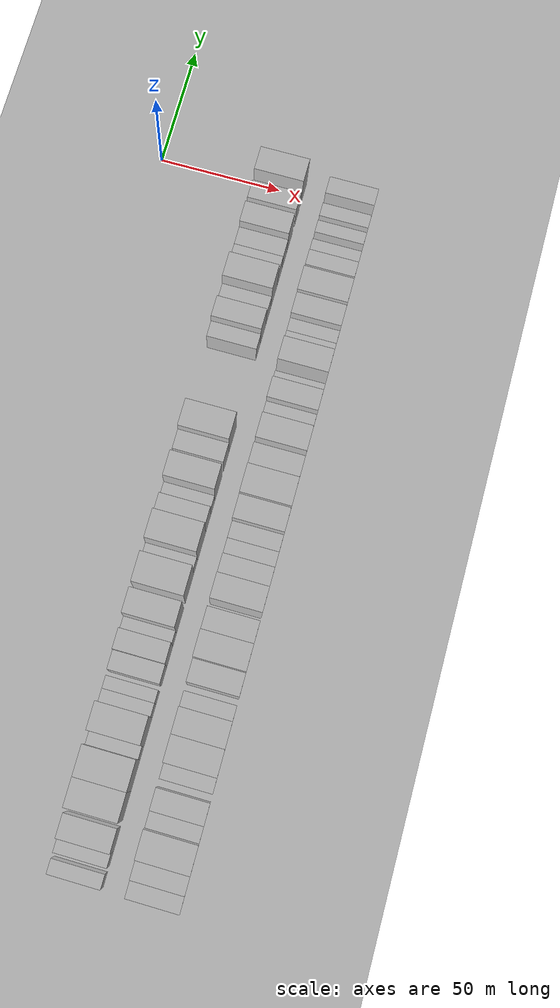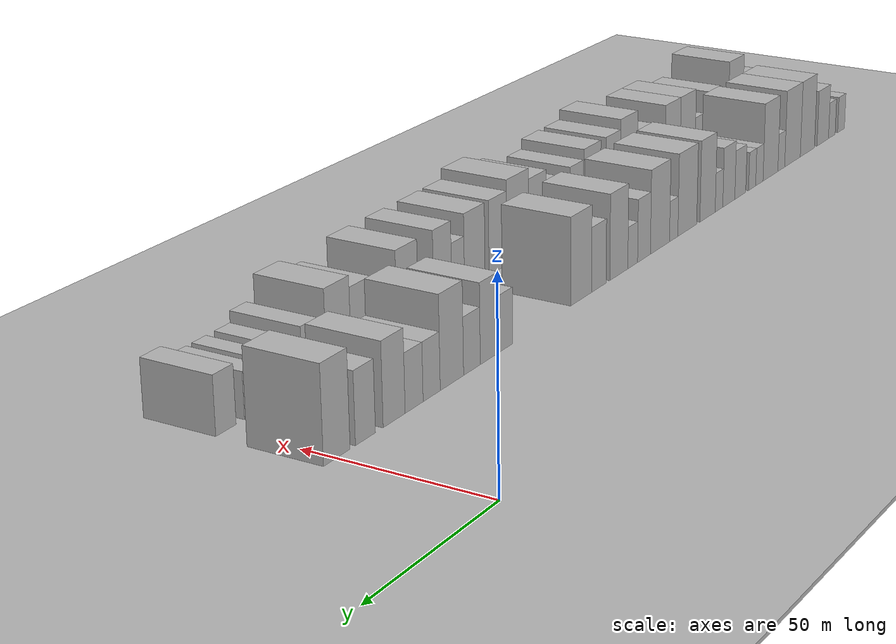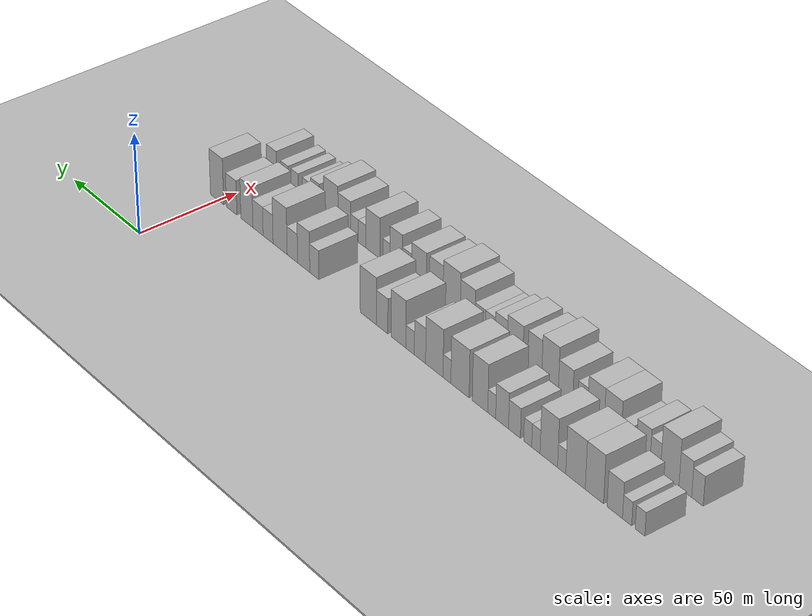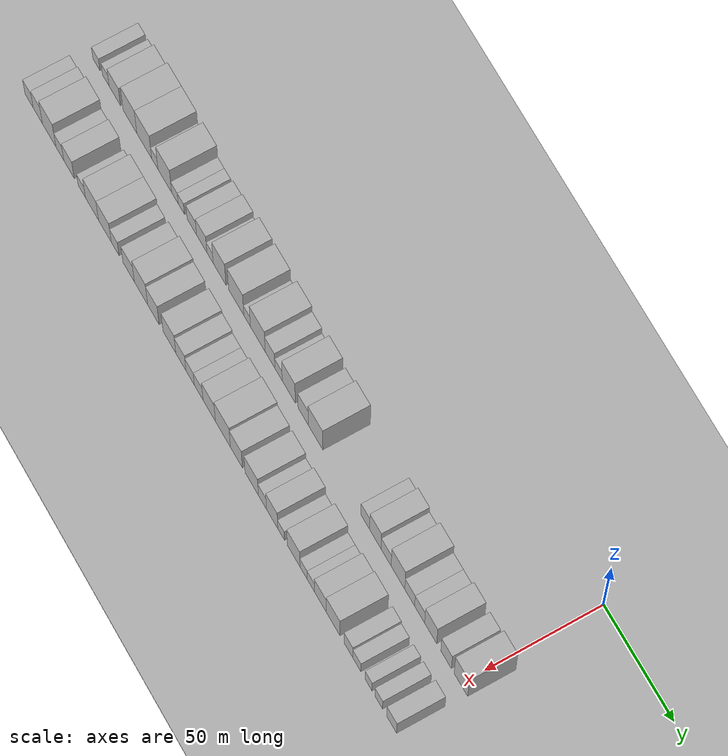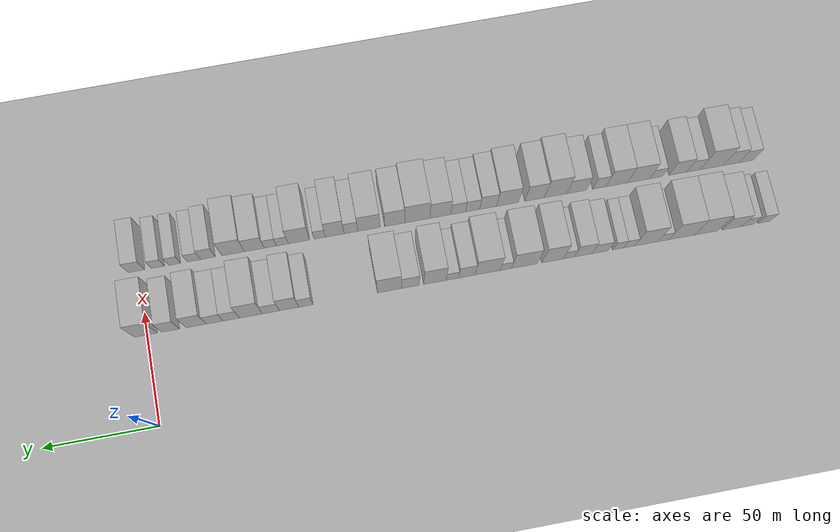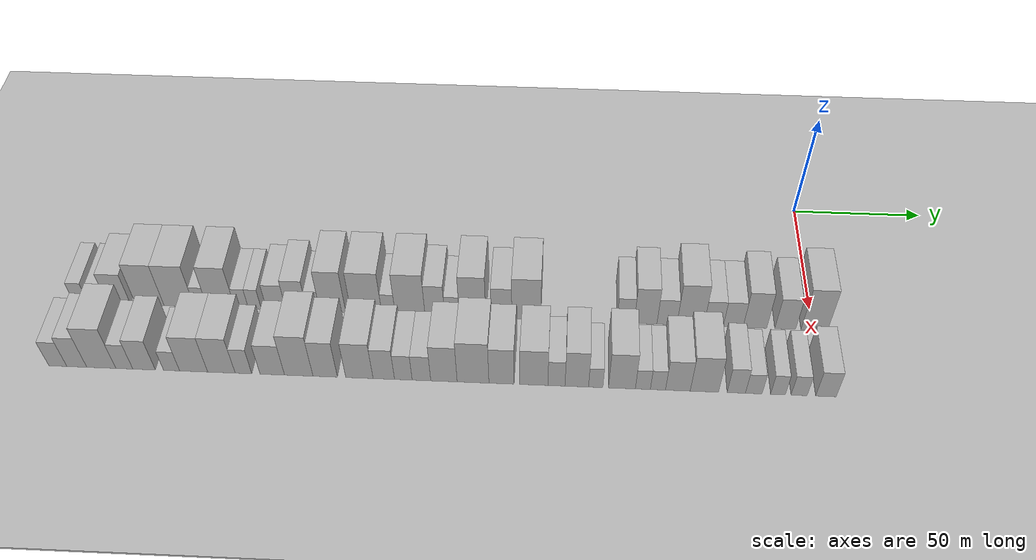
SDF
<sdf version="1.6">
 <world name="default">
  <include><name>ground_plane_1</name><uri>model://HANNAS_ground_plane</uri></include>
  <include>
   <name>ground_plane_2</name>
   <uri>model://HANNAS_ground_plane</uri>
   <pose>100 0 0  0 0 0</pose>
  </include>
  <model name="building_1">
   <static>1</static>
   <pose>50.0000 -275.2254 0 0.000000 0.000000 0.000000</pose>
   <link name="link">
    <pose>0 0 6.00 0 0 0</pose>
    <collision name="collision"><geometry><box><size>20.0000 5.5493 12.0000</size></box></geometry></collision>
    <visual name="visual">
     <cast_shadows>0</cast_shadows>
     <geometry><box><size>20.0000 5.5493 12.0000</size></box></geometry>
     <material>
      <script>
       <uri>model://HANNAS_wall/materials/scripts</uri>
       <uri>model://HANNAS_wall/materials/textures</uri>
       <name>vrc/HANNAS_wall</name>
      </script>
     </material>
    </visual>
   </link>
  </model>
  <model name="building_2">
   <static>1</static>
   <pose>50.0000 -267.8029 0 0.000000 0.000000 0.000000</pose>
   <link name="link">
    <pose>0 0 6.00 0 0 0</pose>
    <collision name="collision"><geometry><box><size>20.0000 5.2957 12.0000</size></box></geometry></collision>
    <visual name="visual">
     <cast_shadows>0</cast_shadows>
     <geometry><box><size>20.0000 5.2957 12.0000</size></box></geometry>
     <material>
      <script>
       <uri>model://HANNAS_wall/materials/scripts</uri>
       <uri>model://HANNAS_wall/materials/textures</uri>
       <name>vrc/HANNAS_wall</name>
      </script>
     </material>
    </visual>
   </link>
  </model>
  <model name="building_3">
   <static>1</static>
   <pose>50.0000 -260.6596 0 0.000000 0.000000 0.000000</pose>
   <link name="link">
    <pose>0 0 9.00 0 0 0</pose>
    <collision name="collision"><geometry><box><size>20.0000 8.9908 18.0000</size></box></geometry></collision>
    <visual name="visual">
     <cast_shadows>0</cast_shadows>
     <geometry><box><size>20.0000 8.9908 18.0000</size></box></geometry>
     <material>
      <script>
       <uri>model://HANNAS_wall/materials/scripts</uri>
       <uri>model://HANNAS_wall/materials/textures</uri>
       <name>vrc/HANNAS_wall</name>
      </script>
     </material>
    </visual>
   </link>
  </model>
  <model name="building_4">
   <static>1</static>
   <pose>50.0000 -248.7745 0 0.000000 0.000000 0.000000</pose>
   <link name="link">
    <pose>0 0 12.00 0 0 0</pose>
    <collision name="collision"><geometry><box><size>20.0000 10.7793 24.0000</size></box></geometry></collision>
    <visual name="visual">
     <cast_shadows>0</cast_shadows>
     <geometry><box><size>20.0000 10.7793 24.0000</size></box></geometry>
     <material>
      <script>
       <uri>model://HANNAS_wall/materials/scripts</uri>
       <uri>model://HANNAS_wall/materials/textures</uri>
       <name>vrc/HANNAS_wall</name>
      </script>
     </material>
    </visual>
   </link>
  </model>
  <model name="building_5">
   <static>1</static>
   <pose>50.0000 -237.6013 0 0.000000 0.000000 0.000000</pose>
   <link name="link">
    <pose>0 0 12.00 0 0 0</pose>
    <collision name="collision"><geometry><box><size>20.0000 11.5671 24.0000</size></box></geometry></collision>
    <visual name="visual">
     <cast_shadows>0</cast_shadows>
     <geometry><box><size>20.0000 11.5671 24.0000</size></box></geometry>
     <material>
      <script>
       <uri>model://HANNAS_wall/materials/scripts</uri>
       <uri>model://HANNAS_wall/materials/textures</uri>
       <name>vrc/HANNAS_wall</name>
      </script>
     </material>
    </visual>
   </link>
  </model>
  <model name="building_6">
   <static>1</static>
   <pose>50.0000 -229.3475 0 0.000000 0.000000 0.000000</pose>
   <link name="link">
    <pose>0 0 6.00 0 0 0</pose>
    <collision name="collision"><geometry><box><size>20.0000 4.9405 12.0000</size></box></geometry></collision>
    <visual name="visual">
     <cast_shadows>0</cast_shadows>
     <geometry><box><size>20.0000 4.9405 12.0000</size></box></geometry>
     <material>
      <script>
       <uri>model://HANNAS_wall/materials/scripts</uri>
       <uri>model://HANNAS_wall/materials/textures</uri>
       <name>vrc/HANNAS_wall</name>
      </script>
     </material>
    </visual>
   </link>
  </model>
  <model name="building_7">
   <static>1</static>
   <pose>50.0000 -221.5886 0 0.000000 0.000000 0.000000</pose>
   <link name="link">
    <pose>0 0 12.00 0 0 0</pose>
    <collision name="collision"><geometry><box><size>20.0000 10.5772 24.0000</size></box></geometry></collision>
    <visual name="visual">
     <cast_shadows>0</cast_shadows>
     <geometry><box><size>20.0000 10.5772 24.0000</size></box></geometry>
     <material>
      <script>
       <uri>model://HANNAS_wall/materials/scripts</uri>
       <uri>model://HANNAS_wall/materials/textures</uri>
       <name>vrc/HANNAS_wall</name>
      </script>
     </material>
    </visual>
   </link>
  </model>
  <model name="building_8">
   <static>1</static>
   <pose>50.0000 -213.7445 0 0.000000 0.000000 0.000000</pose>
   <link name="link">
    <pose>0 0 6.00 0 0 0</pose>
    <collision name="collision"><geometry><box><size>20.0000 5.1109 12.0000</size></box></geometry></collision>
    <visual name="visual">
     <cast_shadows>0</cast_shadows>
     <geometry><box><size>20.0000 5.1109 12.0000</size></box></geometry>
     <material>
      <script>
       <uri>model://HANNAS_wall/materials/scripts</uri>
       <uri>model://HANNAS_wall/materials/textures</uri>
       <name>vrc/HANNAS_wall</name>
      </script>
     </material>
    </visual>
   </link>
  </model>
  <model name="building_9">
   <static>1</static>
   <pose>50.0000 -208.7607 0 0.000000 0.000000 0.000000</pose>
   <link name="link">
    <pose>0 0 6.00 0 0 0</pose>
    <collision name="collision"><geometry><box><size>20.0000 4.8567 12.0000</size></box></geometry></collision>
    <visual name="visual">
     <cast_shadows>0</cast_shadows>
     <geometry><box><size>20.0000 4.8567 12.0000</size></box></geometry>
     <material>
      <script>
       <uri>model://HANNAS_wall/materials/scripts</uri>
       <uri>model://HANNAS_wall/materials/textures</uri>
       <name>vrc/HANNAS_wall</name>
      </script>
     </material>
    </visual>
   </link>
  </model>
  <model name="building_10">
   <static>1</static>
   <pose>50.0000 -200.6562 0 0.000000 0.000000 0.000000</pose>
   <link name="link">
    <pose>0 0 7.50 0 0 0</pose>
    <collision name="collision"><geometry><box><size>20.0000 7.3524 15.0000</size></box></geometry></collision>
    <visual name="visual">
     <cast_shadows>0</cast_shadows>
     <geometry><box><size>20.0000 7.3524 15.0000</size></box></geometry>
     <material>
      <script>
       <uri>model://HANNAS_wall/materials/scripts</uri>
       <uri>model://HANNAS_wall/materials/textures</uri>
       <name>vrc/HANNAS_wall</name>
      </script>
     </material>
    </visual>
   </link>
  </model>
  <model name="building_11">
   <static>1</static>
   <pose>50.0000 -192.9936 0 0.000000 0.000000 0.000000</pose>
   <link name="link">
    <pose>0 0 9.00 0 0 0</pose>
    <collision name="collision"><geometry><box><size>20.0000 7.9729 18.0000</size></box></geometry></collision>
    <visual name="visual">
     <cast_shadows>0</cast_shadows>
     <geometry><box><size>20.0000 7.9729 18.0000</size></box></geometry>
     <material>
      <script>
       <uri>model://HANNAS_wall/materials/scripts</uri>
       <uri>model://HANNAS_wall/materials/textures</uri>
       <name>vrc/HANNAS_wall</name>
      </script>
     </material>
    </visual>
   </link>
  </model>
  <model name="building_12">
   <static>1</static>
   <pose>50.0000 -186.5411 0 0.000000 0.000000 0.000000</pose>
   <link name="link">
    <pose>0 0 6.00 0 0 0</pose>
    <collision name="collision"><geometry><box><size>20.0000 4.9321 12.0000</size></box></geometry></collision>
    <visual name="visual">
     <cast_shadows>0</cast_shadows>
     <geometry><box><size>20.0000 4.9321 12.0000</size></box></geometry>
     <material>
      <script>
       <uri>model://HANNAS_wall/materials/scripts</uri>
       <uri>model://HANNAS_wall/materials/textures</uri>
       <name>vrc/HANNAS_wall</name>
      </script>
     </material>
    </visual>
   </link>
  </model>
  <model name="building_13">
   <static>1</static>
   <pose>50.0000 -179.2054 0 0.000000 0.000000 0.000000</pose>
   <link name="link">
    <pose>0 0 12.00 0 0 0</pose>
    <collision name="collision"><geometry><box><size>20.0000 9.7393 24.0000</size></box></geometry></collision>
    <visual name="visual">
     <cast_shadows>0</cast_shadows>
     <geometry><box><size>20.0000 9.7393 24.0000</size></box></geometry>
     <material>
      <script>
       <uri>model://HANNAS_wall/materials/scripts</uri>
       <uri>model://HANNAS_wall/materials/textures</uri>
       <name>vrc/HANNAS_wall</name>
      </script>
     </material>
    </visual>
   </link>
  </model>
  <model name="building_14">
   <static>1</static>
   <pose>50.0000 -166.5232 0 0.000000 0.000000 0.000000</pose>
   <link name="link">
    <pose>0 0 12.00 0 0 0</pose>
    <collision name="collision"><geometry><box><size>20.0000 11.6252 24.0000</size></box></geometry></collision>
    <visual name="visual">
     <cast_shadows>0</cast_shadows>
     <geometry><box><size>20.0000 11.6252 24.0000</size></box></geometry>
     <material>
      <script>
       <uri>model://HANNAS_wall/materials/scripts</uri>
       <uri>model://HANNAS_wall/materials/textures</uri>
       <name>vrc/HANNAS_wall</name>
      </script>
     </material>
    </visual>
   </link>
  </model>
  <model name="building_15">
   <static>1</static>
   <pose>50.0000 -158.1956 0 0.000000 0.000000 0.000000</pose>
   <link name="link">
    <pose>0 0 6.00 0 0 0</pose>
    <collision name="collision"><geometry><box><size>20.0000 5.0300 12.0000</size></box></geometry></collision>
    <visual name="visual">
     <cast_shadows>0</cast_shadows>
     <geometry><box><size>20.0000 5.0300 12.0000</size></box></geometry>
     <material>
      <script>
       <uri>model://HANNAS_wall/materials/scripts</uri>
       <uri>model://HANNAS_wall/materials/textures</uri>
       <name>vrc/HANNAS_wall</name>
      </script>
     </material>
    </visual>
   </link>
  </model>
  <model name="building_16">
   <static>1</static>
   <pose>50.0000 -150.0507 0 0.000000 0.000000 0.000000</pose>
   <link name="link">
    <pose>0 0 12.00 0 0 0</pose>
    <collision name="collision"><geometry><box><size>20.0000 11.2597 24.0000</size></box></geometry></collision>
    <visual name="visual">
     <cast_shadows>0</cast_shadows>
     <geometry><box><size>20.0000 11.2597 24.0000</size></box></geometry>
     <material>
      <script>
       <uri>model://HANNAS_wall/materials/scripts</uri>
       <uri>model://HANNAS_wall/materials/textures</uri>
       <name>vrc/HANNAS_wall</name>
      </script>
     </material>
    </visual>
   </link>
  </model>
  <model name="building_17">
   <static>1</static>
   <pose>50.0000 -140.7484 0 0.000000 0.000000 0.000000</pose>
   <link name="link">
    <pose>0 0 9.00 0 0 0</pose>
    <collision name="collision"><geometry><box><size>20.0000 7.3451 18.0000</size></box></geometry></collision>
    <visual name="visual">
     <cast_shadows>0</cast_shadows>
     <geometry><box><size>20.0000 7.3451 18.0000</size></box></geometry>
     <material>
      <script>
       <uri>model://HANNAS_wall/materials/scripts</uri>
       <uri>model://HANNAS_wall/materials/textures</uri>
       <name>vrc/HANNAS_wall</name>
      </script>
     </material>
    </visual>
   </link>
  </model>
  <model name="building_18">
   <static>1</static>
   <pose>50.0000 -134.3213 0 0.000000 0.000000 0.000000</pose>
   <link name="link">
    <pose>0 0 6.00 0 0 0</pose>
    <collision name="collision"><geometry><box><size>20.0000 5.5092 12.0000</size></box></geometry></collision>
    <visual name="visual">
     <cast_shadows>0</cast_shadows>
     <geometry><box><size>20.0000 5.5092 12.0000</size></box></geometry>
     <material>
      <script>
       <uri>model://HANNAS_wall/materials/scripts</uri>
       <uri>model://HANNAS_wall/materials/textures</uri>
       <name>vrc/HANNAS_wall</name>
      </script>
     </material>
    </visual>
   </link>
  </model>
  <model name="building_19">
   <static>1</static>
   <pose>50.0000 -126.6029 0 0.000000 0.000000 0.000000</pose>
   <link name="link">
    <pose>0 0 12.00 0 0 0</pose>
    <collision name="collision"><geometry><box><size>20.0000 9.9276 24.0000</size></box></geometry></collision>
    <visual name="visual">
     <cast_shadows>0</cast_shadows>
     <geometry><box><size>20.0000 9.9276 24.0000</size></box></geometry>
     <material>
      <script>
       <uri>model://HANNAS_wall/materials/scripts</uri>
       <uri>model://HANNAS_wall/materials/textures</uri>
       <name>vrc/HANNAS_wall</name>
      </script>
     </material>
    </visual>
   </link>
  </model>
  <model name="building_20">
   <static>1</static>
   <pose>50.0000 -115.7636 0 0.000000 0.000000 0.000000</pose>
   <link name="link">
    <pose>0 0 9.00 0 0 0</pose>
    <collision name="collision"><geometry><box><size>20.0000 7.7510 18.0000</size></box></geometry></collision>
    <visual name="visual">
     <cast_shadows>0</cast_shadows>
     <geometry><box><size>20.0000 7.7510 18.0000</size></box></geometry>
     <material>
      <script>
       <uri>model://HANNAS_wall/materials/scripts</uri>
       <uri>model://HANNAS_wall/materials/textures</uri>
       <name>vrc/HANNAS_wall</name>
      </script>
     </material>
    </visual>
   </link>
  </model>
  <model name="building_21">
   <static>1</static>
   <pose>50.0000 -106.4737 0 0.000000 0.000000 0.000000</pose>
   <link name="link">
    <pose>0 0 12.00 0 0 0</pose>
    <collision name="collision"><geometry><box><size>20.0000 10.8287 24.0000</size></box></geometry></collision>
    <visual name="visual">
     <cast_shadows>0</cast_shadows>
     <geometry><box><size>20.0000 10.8287 24.0000</size></box></geometry>
     <material>
      <script>
       <uri>model://HANNAS_wall/materials/scripts</uri>
       <uri>model://HANNAS_wall/materials/textures</uri>
       <name>vrc/HANNAS_wall</name>
      </script>
     </material>
    </visual>
   </link>
  </model>
  <model name="building_22">
   <static>1</static>
   <pose>50.0000 -69.4700 0 0.000000 0.000000 0.000000</pose>
   <link name="link">
    <pose>0 0 7.50 0 0 0</pose>
    <collision name="collision"><geometry><box><size>20.0000 6.3929 15.0000</size></box></geometry></collision>
    <visual name="visual">
     <cast_shadows>0</cast_shadows>
     <geometry><box><size>20.0000 6.3929 15.0000</size></box></geometry>
     <material>
      <script>
       <uri>model://HANNAS_wall/materials/scripts</uri>
       <uri>model://HANNAS_wall/materials/textures</uri>
       <name>vrc/HANNAS_wall</name>
      </script>
     </material>
    </visual>
   </link>
  </model>
  <model name="building_23">
   <static>1</static>
   <pose>50.0000 -62.0235 0 0.000000 0.000000 0.000000</pose>
   <link name="link">
    <pose>0 0 10.50 0 0 0</pose>
    <collision name="collision"><geometry><box><size>20.0000 8.5001 21.0000</size></box></geometry></collision>
    <visual name="visual">
     <cast_shadows>0</cast_shadows>
     <geometry><box><size>20.0000 8.5001 21.0000</size></box></geometry>
     <material>
      <script>
       <uri>model://HANNAS_wall/materials/scripts</uri>
       <uri>model://HANNAS_wall/materials/textures</uri>
       <name>vrc/HANNAS_wall</name>
      </script>
     </material>
    </visual>
   </link>
  </model>
  <model name="building_24">
   <static>1</static>
   <pose>50.0000 -54.0751 0 0.000000 0.000000 0.000000</pose>
   <link name="link">
    <pose>0 0 7.50 0 0 0</pose>
    <collision name="collision"><geometry><box><size>20.0000 7.3966 15.0000</size></box></geometry></collision>
    <visual name="visual">
     <cast_shadows>0</cast_shadows>
     <geometry><box><size>20.0000 7.3966 15.0000</size></box></geometry>
     <material>
      <script>
       <uri>model://HANNAS_wall/materials/scripts</uri>
       <uri>model://HANNAS_wall/materials/textures</uri>
       <name>vrc/HANNAS_wall</name>
      </script>
     </material>
    </visual>
   </link>
  </model>
  <model name="building_25">
   <static>1</static>
   <pose>50.0000 -45.3534 0 0.000000 0.000000 0.000000</pose>
   <link name="link">
    <pose>0 0 12.00 0 0 0</pose>
    <collision name="collision"><geometry><box><size>20.0000 10.0468 24.0000</size></box></geometry></collision>
    <visual name="visual">
     <cast_shadows>0</cast_shadows>
     <geometry><box><size>20.0000 10.0468 24.0000</size></box></geometry>
     <material>
      <script>
       <uri>model://HANNAS_wall/materials/scripts</uri>
       <uri>model://HANNAS_wall/materials/textures</uri>
       <name>vrc/HANNAS_wall</name>
      </script>
     </material>
    </visual>
   </link>
  </model>
  <model name="building_26">
   <static>1</static>
   <pose>50.0000 -36.7470 0 0.000000 0.000000 0.000000</pose>
   <link name="link">
    <pose>0 0 7.50 0 0 0</pose>
    <collision name="collision"><geometry><box><size>20.0000 7.1660 15.0000</size></box></geometry></collision>
    <visual name="visual">
     <cast_shadows>0</cast_shadows>
     <geometry><box><size>20.0000 7.1660 15.0000</size></box></geometry>
     <material>
      <script>
       <uri>model://HANNAS_wall/materials/scripts</uri>
       <uri>model://HANNAS_wall/materials/textures</uri>
       <name>vrc/HANNAS_wall</name>
      </script>
     </material>
    </visual>
   </link>
  </model>
  <model name="building_27">
   <static>1</static>
   <pose>50.0000 -29.4997 0 0.000000 0.000000 0.000000</pose>
   <link name="link">
    <pose>0 0 7.50 0 0 0</pose>
    <collision name="collision"><geometry><box><size>20.0000 7.3286 15.0000</size></box></geometry></collision>
    <visual name="visual">
     <cast_shadows>0</cast_shadows>
     <geometry><box><size>20.0000 7.3286 15.0000</size></box></geometry>
     <material>
      <script>
       <uri>model://HANNAS_wall/materials/scripts</uri>
       <uri>model://HANNAS_wall/materials/textures</uri>
       <name>vrc/HANNAS_wall</name>
      </script>
     </material>
    </visual>
   </link>
  </model>
  <model name="building_28">
   <static>1</static>
   <pose>50.0000 -21.4595 0 0.000000 0.000000 0.000000</pose>
   <link name="link">
    <pose>0 0 10.50 0 0 0</pose>
    <collision name="collision"><geometry><box><size>20.0000 8.7516 21.0000</size></box></geometry></collision>
    <visual name="visual">
     <cast_shadows>0</cast_shadows>
     <geometry><box><size>20.0000 8.7516 21.0000</size></box></geometry>
     <material>
      <script>
       <uri>model://HANNAS_wall/materials/scripts</uri>
       <uri>model://HANNAS_wall/materials/textures</uri>
       <name>vrc/HANNAS_wall</name>
      </script>
     </material>
    </visual>
   </link>
  </model>
  <model name="building_29">
   <static>1</static>
   <pose>50.0000 -10.2537 0 0.000000 0.000000 0.000000</pose>
   <link name="link">
    <pose>0 0 9.00 0 0 0</pose>
    <collision name="collision"><geometry><box><size>20.0000 7.6600 18.0000</size></box></geometry></collision>
    <visual name="visual">
     <cast_shadows>0</cast_shadows>
     <geometry><box><size>20.0000 7.6600 18.0000</size></box></geometry>
     <material>
      <script>
       <uri>model://HANNAS_wall/materials/scripts</uri>
       <uri>model://HANNAS_wall/materials/textures</uri>
       <name>vrc/HANNAS_wall</name>
      </script>
     </material>
    </visual>
   </link>
  </model>
  <model name="building_30">
   <static>1</static>
   <pose>50.0000 0.4802 0 0.000000 0.000000 0.000000</pose>
   <link name="link">
    <pose>0 0 12.00 0 0 0</pose>
    <collision name="collision"><geometry><box><size>20.0000 9.8076 24.0000</size></box></geometry></collision>
    <visual name="visual">
     <cast_shadows>0</cast_shadows>
     <geometry><box><size>20.0000 9.8076 24.0000</size></box></geometry>
     <material>
      <script>
       <uri>model://HANNAS_wall/materials/scripts</uri>
       <uri>model://HANNAS_wall/materials/textures</uri>
       <name>vrc/HANNAS_wall</name>
      </script>
     </material>
    </visual>
   </link>
  </model>
  <model name="building_62">
   <static>1</static>
   <pose>79.0000 -274.7038 0 0.000000 0.000000 0.000000</pose>
   <link name="link">
    <pose>0 0 7.50 0 0 0</pose>
    <collision name="collision"><geometry><box><size>20.0000 6.5923 15.0000</size></box></geometry></collision>
    <visual name="visual">
     <cast_shadows>0</cast_shadows>
     <geometry><box><size>20.0000 6.5923 15.0000</size></box></geometry>
     <material>
      <script>
       <uri>model://HANNAS_wall/materials/scripts</uri>
       <uri>model://HANNAS_wall/materials/textures</uri>
       <name>vrc/HANNAS_wall</name>
      </script>
     </material>
    </visual>
   </link>
  </model>
  <model name="building_63">
   <static>1</static>
   <pose>79.0000 -267.7580 0 0.000000 0.000000 0.000000</pose>
   <link name="link">
    <pose>0 0 9.00 0 0 0</pose>
    <collision name="collision"><geometry><box><size>20.0000 7.2993 18.0000</size></box></geometry></collision>
    <visual name="visual">
     <cast_shadows>0</cast_shadows>
     <geometry><box><size>20.0000 7.2993 18.0000</size></box></geometry>
     <material>
      <script>
       <uri>model://HANNAS_wall/materials/scripts</uri>
       <uri>model://HANNAS_wall/materials/textures</uri>
       <name>vrc/HANNAS_wall</name>
      </script>
     </material>
    </visual>
   </link>
  </model>
  <model name="building_64">
   <static>1</static>
   <pose>79.0000 -258.7711 0 0.000000 0.000000 0.000000</pose>
   <link name="link">
    <pose>0 0 12.00 0 0 0</pose>
    <collision name="collision"><geometry><box><size>20.0000 10.6743 24.0000</size></box></geometry></collision>
    <visual name="visual">
     <cast_shadows>0</cast_shadows>
     <geometry><box><size>20.0000 10.6743 24.0000</size></box></geometry>
     <material>
      <script>
       <uri>model://HANNAS_wall/materials/scripts</uri>
       <uri>model://HANNAS_wall/materials/textures</uri>
       <name>vrc/HANNAS_wall</name>
      </script>
     </material>
    </visual>
   </link>
  </model>
  <model name="building_65">
   <static>1</static>
   <pose>79.0000 -250.3494 0 0.000000 0.000000 0.000000</pose>
   <link name="link">
    <pose>0 0 7.50 0 0 0</pose>
    <collision name="collision"><geometry><box><size>20.0000 6.1691 15.0000</size></box></geometry></collision>
    <visual name="visual">
     <cast_shadows>0</cast_shadows>
     <geometry><box><size>20.0000 6.1691 15.0000</size></box></geometry>
     <material>
      <script>
       <uri>model://HANNAS_wall/materials/scripts</uri>
       <uri>model://HANNAS_wall/materials/textures</uri>
       <name>vrc/HANNAS_wall</name>
      </script>
     </material>
    </visual>
   </link>
  </model>
  <model name="building_66">
   <static>1</static>
   <pose>79.0000 -243.1627 0 0.000000 0.000000 0.000000</pose>
   <link name="link">
    <pose>0 0 9.00 0 0 0</pose>
    <collision name="collision"><geometry><box><size>20.0000 8.2044 18.0000</size></box></geometry></collision>
    <visual name="visual">
     <cast_shadows>0</cast_shadows>
     <geometry><box><size>20.0000 8.2044 18.0000</size></box></geometry>
     <material>
      <script>
       <uri>model://HANNAS_wall/materials/scripts</uri>
       <uri>model://HANNAS_wall/materials/textures</uri>
       <name>vrc/HANNAS_wall</name>
      </script>
     </material>
    </visual>
   </link>
  </model>
  <model name="building_67">
   <static>1</static>
   <pose>79.0000 -233.1358 0 0.000000 0.000000 0.000000</pose>
   <link name="link">
    <pose>0 0 6.00 0 0 0</pose>
    <collision name="collision"><geometry><box><size>20.0000 5.8494 12.0000</size></box></geometry></collision>
    <visual name="visual">
     <cast_shadows>0</cast_shadows>
     <geometry><box><size>20.0000 5.8494 12.0000</size></box></geometry>
     <material>
      <script>
       <uri>model://HANNAS_wall/materials/scripts</uri>
       <uri>model://HANNAS_wall/materials/textures</uri>
       <name>vrc/HANNAS_wall</name>
      </script>
     </material>
    </visual>
   </link>
  </model>
  <model name="building_68">
   <static>1</static>
   <pose>79.0000 -225.1004 0 0.000000 0.000000 0.000000</pose>
   <link name="link">
    <pose>0 0 10.50 0 0 0</pose>
    <collision name="collision"><geometry><box><size>20.0000 10.2213 21.0000</size></box></geometry></collision>
    <visual name="visual">
     <cast_shadows>0</cast_shadows>
     <geometry><box><size>20.0000 10.2213 21.0000</size></box></geometry>
     <material>
      <script>
       <uri>model://HANNAS_wall/materials/scripts</uri>
       <uri>model://HANNAS_wall/materials/textures</uri>
       <name>vrc/HANNAS_wall</name>
      </script>
     </material>
    </visual>
   </link>
  </model>
  <model name="building_69">
   <static>1</static>
   <pose>79.0000 -214.9961 0 0.000000 0.000000 0.000000</pose>
   <link name="link">
    <pose>0 0 10.50 0 0 0</pose>
    <collision name="collision"><geometry><box><size>20.0000 9.9872 21.0000</size></box></geometry></collision>
    <visual name="visual">
     <cast_shadows>0</cast_shadows>
     <geometry><box><size>20.0000 9.9872 21.0000</size></box></geometry>
     <material>
      <script>
       <uri>model://HANNAS_wall/materials/scripts</uri>
       <uri>model://HANNAS_wall/materials/textures</uri>
       <name>vrc/HANNAS_wall</name>
      </script>
     </material>
    </visual>
   </link>
  </model>
  <model name="building_70">
   <static>1</static>
   <pose>79.0000 -206.9908 0 0.000000 0.000000 0.000000</pose>
   <link name="link">
    <pose>0 0 7.50 0 0 0</pose>
    <collision name="collision"><geometry><box><size>20.0000 6.0235 15.0000</size></box></geometry></collision>
    <visual name="visual">
     <cast_shadows>0</cast_shadows>
     <geometry><box><size>20.0000 6.0235 15.0000</size></box></geometry>
     <material>
      <script>
       <uri>model://HANNAS_wall/materials/scripts</uri>
       <uri>model://HANNAS_wall/materials/textures</uri>
       <name>vrc/HANNAS_wall</name>
      </script>
     </material>
    </visual>
   </link>
  </model>
  <model name="building_71">
   <static>1</static>
   <pose>79.0000 -196.5531 0 0.000000 0.000000 0.000000</pose>
   <link name="link">
    <pose>0 0 9.00 0 0 0</pose>
    <collision name="collision"><geometry><box><size>20.0000 8.8519 18.0000</size></box></geometry></collision>
    <visual name="visual">
     <cast_shadows>0</cast_shadows>
     <geometry><box><size>20.0000 8.8519 18.0000</size></box></geometry>
     <material>
      <script>
       <uri>model://HANNAS_wall/materials/scripts</uri>
       <uri>model://HANNAS_wall/materials/textures</uri>
       <name>vrc/HANNAS_wall</name>
      </script>
     </material>
    </visual>
   </link>
  </model>
  <model name="building_72">
   <static>1</static>
   <pose>79.0000 -186.9749 0 0.000000 0.000000 0.000000</pose>
   <link name="link">
    <pose>0 0 12.00 0 0 0</pose>
    <collision name="collision"><geometry><box><size>20.0000 10.3046 24.0000</size></box></geometry></collision>
    <visual name="visual">
     <cast_shadows>0</cast_shadows>
     <geometry><box><size>20.0000 10.3046 24.0000</size></box></geometry>
     <material>
      <script>
       <uri>model://HANNAS_wall/materials/scripts</uri>
       <uri>model://HANNAS_wall/materials/textures</uri>
       <name>vrc/HANNAS_wall</name>
      </script>
     </material>
    </visual>
   </link>
  </model>
  <model name="building_73">
   <static>1</static>
   <pose>79.0000 -177.4079 0 0.000000 0.000000 0.000000</pose>
   <link name="link">
    <pose>0 0 10.50 0 0 0</pose>
    <collision name="collision"><geometry><box><size>20.0000 8.8294 21.0000</size></box></geometry></collision>
    <visual name="visual">
     <cast_shadows>0</cast_shadows>
     <geometry><box><size>20.0000 8.8294 21.0000</size></box></geometry>
     <material>
      <script>
       <uri>model://HANNAS_wall/materials/scripts</uri>
       <uri>model://HANNAS_wall/materials/textures</uri>
       <name>vrc/HANNAS_wall</name>
      </script>
     </material>
    </visual>
   </link>
  </model>
  <model name="building_74">
   <static>1</static>
   <pose>79.0000 -165.0668 0 0.000000 0.000000 0.000000</pose>
   <link name="link">
    <pose>0 0 10.50 0 0 0</pose>
    <collision name="collision"><geometry><box><size>20.0000 9.8529 21.0000</size></box></geometry></collision>
    <visual name="visual">
     <cast_shadows>0</cast_shadows>
     <geometry><box><size>20.0000 9.8529 21.0000</size></box></geometry>
     <material>
      <script>
       <uri>model://HANNAS_wall/materials/scripts</uri>
       <uri>model://HANNAS_wall/materials/textures</uri>
       <name>vrc/HANNAS_wall</name>
      </script>
     </material>
    </visual>
   </link>
  </model>
  <model name="building_75">
   <static>1</static>
   <pose>79.0000 -156.2728 0 0.000000 0.000000 0.000000</pose>
   <link name="link">
    <pose>0 0 9.00 0 0 0</pose>
    <collision name="collision"><geometry><box><size>20.0000 7.7352 18.0000</size></box></geometry></collision>
    <visual name="visual">
     <cast_shadows>0</cast_shadows>
     <geometry><box><size>20.0000 7.7352 18.0000</size></box></geometry>
     <material>
      <script>
       <uri>model://HANNAS_wall/materials/scripts</uri>
       <uri>model://HANNAS_wall/materials/textures</uri>
       <name>vrc/HANNAS_wall</name>
      </script>
     </material>
    </visual>
   </link>
  </model>
  <model name="building_76">
   <static>1</static>
   <pose>79.0000 -149.2335 0 0.000000 0.000000 0.000000</pose>
   <link name="link">
    <pose>0 0 7.50 0 0 0</pose>
    <collision name="collision"><geometry><box><size>20.0000 6.3434 15.0000</size></box></geometry></collision>
    <visual name="visual">
     <cast_shadows>0</cast_shadows>
     <geometry><box><size>20.0000 6.3434 15.0000</size></box></geometry>
     <material>
      <script>
       <uri>model://HANNAS_wall/materials/scripts</uri>
       <uri>model://HANNAS_wall/materials/textures</uri>
       <name>vrc/HANNAS_wall</name>
      </script>
     </material>
    </visual>
   </link>
  </model>
  <model name="building_77">
   <static>1</static>
   <pose>79.0000 -142.7230 0 0.000000 0.000000 0.000000</pose>
   <link name="link">
    <pose>0 0 7.50 0 0 0</pose>
    <collision name="collision"><geometry><box><size>20.0000 6.6776 15.0000</size></box></geometry></collision>
    <visual name="visual">
     <cast_shadows>0</cast_shadows>
     <geometry><box><size>20.0000 6.6776 15.0000</size></box></geometry>
     <material>
      <script>
       <uri>model://HANNAS_wall/materials/scripts</uri>
       <uri>model://HANNAS_wall/materials/textures</uri>
       <name>vrc/HANNAS_wall</name>
      </script>
     </material>
    </visual>
   </link>
  </model>
  <model name="building_78">
   <static>1</static>
   <pose>79.0000 -134.6556 0 0.000000 0.000000 0.000000</pose>
   <link name="link">
    <pose>0 0 10.50 0 0 0</pose>
    <collision name="collision"><geometry><box><size>20.0000 9.4573 21.0000</size></box></geometry></collision>
    <visual name="visual">
     <cast_shadows>0</cast_shadows>
     <geometry><box><size>20.0000 9.4573 21.0000</size></box></geometry>
     <material>
      <script>
       <uri>model://HANNAS_wall/materials/scripts</uri>
       <uri>model://HANNAS_wall/materials/textures</uri>
       <name>vrc/HANNAS_wall</name>
      </script>
     </material>
    </visual>
   </link>
  </model>
  <model name="building_79">
   <static>1</static>
   <pose>79.0000 -124.2389 0 0.000000 0.000000 0.000000</pose>
   <link name="link">
    <pose>0 0 12.00 0 0 0</pose>
    <collision name="collision"><geometry><box><size>20.0000 11.3761 24.0000</size></box></geometry></collision>
    <visual name="visual">
     <cast_shadows>0</cast_shadows>
     <geometry><box><size>20.0000 11.3761 24.0000</size></box></geometry>
     <material>
      <script>
       <uri>model://HANNAS_wall/materials/scripts</uri>
       <uri>model://HANNAS_wall/materials/textures</uri>
       <name>vrc/HANNAS_wall</name>
      </script>
     </material>
    </visual>
   </link>
  </model>
  <model name="building_80">
   <static>1</static>
   <pose>79.0000 -114.0490 0 0.000000 0.000000 0.000000</pose>
   <link name="link">
    <pose>0 0 10.50 0 0 0</pose>
    <collision name="collision"><geometry><box><size>20.0000 9.0037 21.0000</size></box></geometry></collision>
    <visual name="visual">
     <cast_shadows>0</cast_shadows>
     <geometry><box><size>20.0000 9.0037 21.0000</size></box></geometry>
     <material>
      <script>
       <uri>model://HANNAS_wall/materials/scripts</uri>
       <uri>model://HANNAS_wall/materials/textures</uri>
       <name>vrc/HANNAS_wall</name>
      </script>
     </material>
    </visual>
   </link>
  </model>
  <model name="building_81">
   <static>1</static>
   <pose>79.0000 -102.5260 0 0.000000 0.000000 0.000000</pose>
   <link name="link">
    <pose>0 0 10.50 0 0 0</pose>
    <collision name="collision"><geometry><box><size>20.0000 10.0424 21.0000</size></box></geometry></collision>
    <visual name="visual">
     <cast_shadows>0</cast_shadows>
     <geometry><box><size>20.0000 10.0424 21.0000</size></box></geometry>
     <material>
      <script>
       <uri>model://HANNAS_wall/materials/scripts</uri>
       <uri>model://HANNAS_wall/materials/textures</uri>
       <name>vrc/HANNAS_wall</name>
      </script>
     </material>
    </visual>
   </link>
  </model>
  <model name="building_82">
   <static>1</static>
   <pose>79.0000 -94.4530 0 0.000000 0.000000 0.000000</pose>
   <link name="link">
    <pose>0 0 7.50 0 0 0</pose>
    <collision name="collision"><geometry><box><size>20.0000 6.1035 15.0000</size></box></geometry></collision>
    <visual name="visual">
     <cast_shadows>0</cast_shadows>
     <geometry><box><size>20.0000 6.1035 15.0000</size></box></geometry>
     <material>
      <script>
       <uri>model://HANNAS_wall/materials/scripts</uri>
       <uri>model://HANNAS_wall/materials/textures</uri>
       <name>vrc/HANNAS_wall</name>
      </script>
     </material>
    </visual>
   </link>
  </model>
  <model name="building_83">
   <static>1</static>
   <pose>79.0000 -87.1955 0 0.000000 0.000000 0.000000</pose>
   <link name="link">
    <pose>0 0 10.50 0 0 0</pose>
    <collision name="collision"><geometry><box><size>20.0000 8.4114 21.0000</size></box></geometry></collision>
    <visual name="visual">
     <cast_shadows>0</cast_shadows>
     <geometry><box><size>20.0000 8.4114 21.0000</size></box></geometry>
     <material>
      <script>
       <uri>model://HANNAS_wall/materials/scripts</uri>
       <uri>model://HANNAS_wall/materials/textures</uri>
       <name>vrc/HANNAS_wall</name>
      </script>
     </material>
    </visual>
   </link>
  </model>
  <model name="building_84">
   <static>1</static>
   <pose>79.0000 -80.4474 0 0.000000 0.000000 0.000000</pose>
   <link name="link">
    <pose>0 0 6.00 0 0 0</pose>
    <collision name="collision"><geometry><box><size>20.0000 5.0849 12.0000</size></box></geometry></collision>
    <visual name="visual">
     <cast_shadows>0</cast_shadows>
     <geometry><box><size>20.0000 5.0849 12.0000</size></box></geometry>
     <material>
      <script>
       <uri>model://HANNAS_wall/materials/scripts</uri>
       <uri>model://HANNAS_wall/materials/textures</uri>
       <name>vrc/HANNAS_wall</name>
      </script>
     </material>
    </visual>
   </link>
  </model>
  <model name="building_85">
   <static>1</static>
   <pose>79.0000 -71.1343 0 0.000000 0.000000 0.000000</pose>
   <link name="link">
    <pose>0 0 10.50 0 0 0</pose>
    <collision name="collision"><geometry><box><size>20.0000 9.5413 21.0000</size></box></geometry></collision>
    <visual name="visual">
     <cast_shadows>0</cast_shadows>
     <geometry><box><size>20.0000 9.5413 21.0000</size></box></geometry>
     <material>
      <script>
       <uri>model://HANNAS_wall/materials/scripts</uri>
       <uri>model://HANNAS_wall/materials/textures</uri>
       <name>vrc/HANNAS_wall</name>
      </script>
     </material>
    </visual>
   </link>
  </model>
  <model name="building_86">
   <static>1</static>
   <pose>79.0000 -63.6953 0 0.000000 0.000000 0.000000</pose>
   <link name="link">
    <pose>0 0 6.00 0 0 0</pose>
    <collision name="collision"><geometry><box><size>20.0000 5.3367 12.0000</size></box></geometry></collision>
    <visual name="visual">
     <cast_shadows>0</cast_shadows>
     <geometry><box><size>20.0000 5.3367 12.0000</size></box></geometry>
     <material>
      <script>
       <uri>model://HANNAS_wall/materials/scripts</uri>
       <uri>model://HANNAS_wall/materials/textures</uri>
       <name>vrc/HANNAS_wall</name>
      </script>
     </material>
    </visual>
   </link>
  </model>
  <model name="building_87">
   <static>1</static>
   <pose>79.0000 -58.3521 0 0.000000 0.000000 0.000000</pose>
   <link name="link">
    <pose>0 0 6.00 0 0 0</pose>
    <collision name="collision"><geometry><box><size>20.0000 5.3498 12.0000</size></box></geometry></collision>
    <visual name="visual">
     <cast_shadows>0</cast_shadows>
     <geometry><box><size>20.0000 5.3498 12.0000</size></box></geometry>
     <material>
      <script>
       <uri>model://HANNAS_wall/materials/scripts</uri>
       <uri>model://HANNAS_wall/materials/textures</uri>
       <name>vrc/HANNAS_wall</name>
      </script>
     </material>
    </visual>
   </link>
  </model>
  <model name="building_88">
   <static>1</static>
   <pose>79.0000 -51.2823 0 0.000000 0.000000 0.000000</pose>
   <link name="link">
    <pose>0 0 9.00 0 0 0</pose>
    <collision name="collision"><geometry><box><size>20.0000 8.7898 18.0000</size></box></geometry></collision>
    <visual name="visual">
     <cast_shadows>0</cast_shadows>
     <geometry><box><size>20.0000 8.7898 18.0000</size></box></geometry>
     <material>
      <script>
       <uri>model://HANNAS_wall/materials/scripts</uri>
       <uri>model://HANNAS_wall/materials/textures</uri>
       <name>vrc/HANNAS_wall</name>
      </script>
     </material>
    </visual>
   </link>
  </model>
  <model name="building_89">
   <static>1</static>
   <pose>79.0000 -41.8593 0 0.000000 0.000000 0.000000</pose>
   <link name="link">
    <pose>0 0 10.50 0 0 0</pose>
    <collision name="collision"><geometry><box><size>20.0000 10.0562 21.0000</size></box></geometry></collision>
    <visual name="visual">
     <cast_shadows>0</cast_shadows>
     <geometry><box><size>20.0000 10.0562 21.0000</size></box></geometry>
     <material>
      <script>
       <uri>model://HANNAS_wall/materials/scripts</uri>
       <uri>model://HANNAS_wall/materials/textures</uri>
       <name>vrc/HANNAS_wall</name>
      </script>
     </material>
    </visual>
   </link>
  </model>
  <model name="building_90">
   <static>1</static>
   <pose>79.0000 -30.5949 0 0.000000 0.000000 0.000000</pose>
   <link name="link">
    <pose>0 0 7.50 0 0 0</pose>
    <collision name="collision"><geometry><box><size>20.0000 6.4726 15.0000</size></box></geometry></collision>
    <visual name="visual">
     <cast_shadows>0</cast_shadows>
     <geometry><box><size>20.0000 6.4726 15.0000</size></box></geometry>
     <material>
      <script>
       <uri>model://HANNAS_wall/materials/scripts</uri>
       <uri>model://HANNAS_wall/materials/textures</uri>
       <name>vrc/HANNAS_wall</name>
      </script>
     </material>
    </visual>
   </link>
  </model>
  <model name="building_91">
   <static>1</static>
   <pose>79.0000 -24.4163 0 0.000000 0.000000 0.000000</pose>
   <link name="link">
    <pose>0 0 6.00 0 0 0</pose>
    <collision name="collision"><geometry><box><size>20.0000 5.8846 12.0000</size></box></geometry></collision>
    <visual name="visual">
     <cast_shadows>0</cast_shadows>
     <geometry><box><size>20.0000 5.8846 12.0000</size></box></geometry>
     <material>
      <script>
       <uri>model://HANNAS_wall/materials/scripts</uri>
       <uri>model://HANNAS_wall/materials/textures</uri>
       <name>vrc/HANNAS_wall</name>
      </script>
     </material>
    </visual>
   </link>
  </model>
  <model name="building_92">
   <static>1</static>
   <pose>79.0000 -15.8689 0 0.000000 0.000000 0.000000</pose>
   <link name="link">
    <pose>0 0 6.00 0 0 0</pose>
    <collision name="collision"><geometry><box><size>20.0000 5.2101 12.0000</size></box></geometry></collision>
    <visual name="visual">
     <cast_shadows>0</cast_shadows>
     <geometry><box><size>20.0000 5.2101 12.0000</size></box></geometry>
     <material>
      <script>
       <uri>model://HANNAS_wall/materials/scripts</uri>
       <uri>model://HANNAS_wall/materials/textures</uri>
       <name>vrc/HANNAS_wall</name>
      </script>
     </material>
    </visual>
   </link>
  </model>
  <model name="building_93">
   <static>1</static>
   <pose>79.0000 -8.4298 0 0.000000 0.000000 0.000000</pose>
   <link name="link">
    <pose>0 0 6.00 0 0 0</pose>
    <collision name="collision"><geometry><box><size>20.0000 5.6682 12.0000</size></box></geometry></collision>
    <visual name="visual">
     <cast_shadows>0</cast_shadows>
     <geometry><box><size>20.0000 5.6682 12.0000</size></box></geometry>
     <material>
      <script>
       <uri>model://HANNAS_wall/materials/scripts</uri>
       <uri>model://HANNAS_wall/materials/textures</uri>
       <name>vrc/HANNAS_wall</name>
      </script>
     </material>
    </visual>
   </link>
  </model>
  <model name="building_94">
   <static>1</static>
   <pose>79.0000 1.0166 0 0.000000 0.000000 0.000000</pose>
   <link name="link">
    <pose>0 0 7.50 0 0 0</pose>
    <collision name="collision"><geometry><box><size>20.0000 7.2247 15.0000</size></box></geometry></collision>
    <visual name="visual">
     <cast_shadows>0</cast_shadows>
     <geometry><box><size>20.0000 7.2247 15.0000</size></box></geometry>
     <material>
      <script>
       <uri>model://HANNAS_wall/materials/scripts</uri>
       <uri>model://HANNAS_wall/materials/textures</uri>
       <name>vrc/HANNAS_wall</name>
      </script>
     </material>
    </visual>
   </link>
  </model>
 </world>
</sdf>
